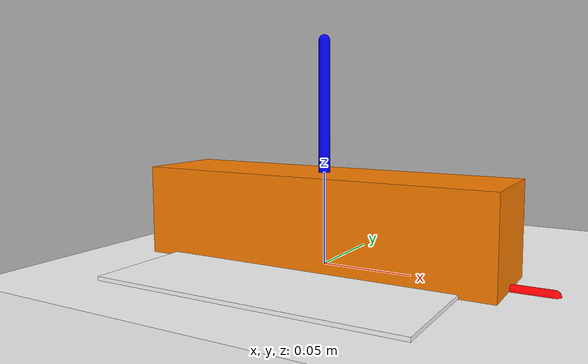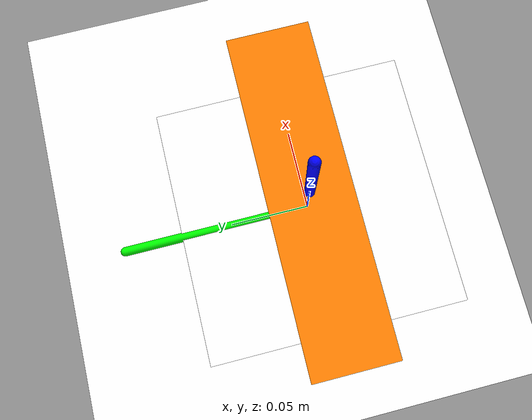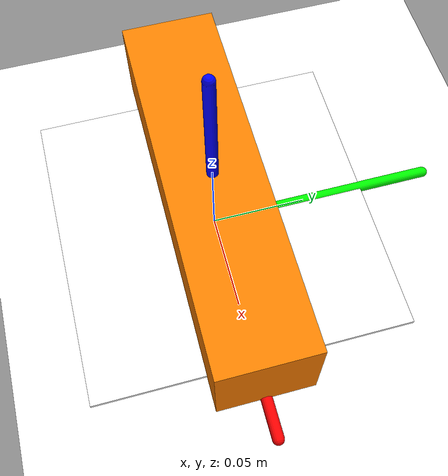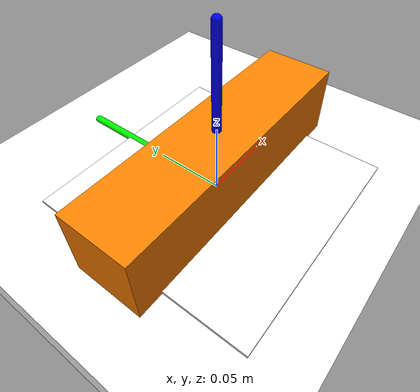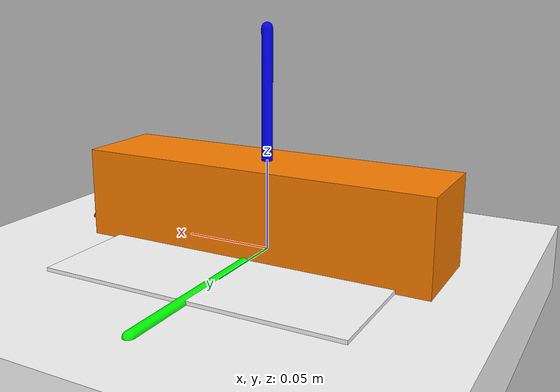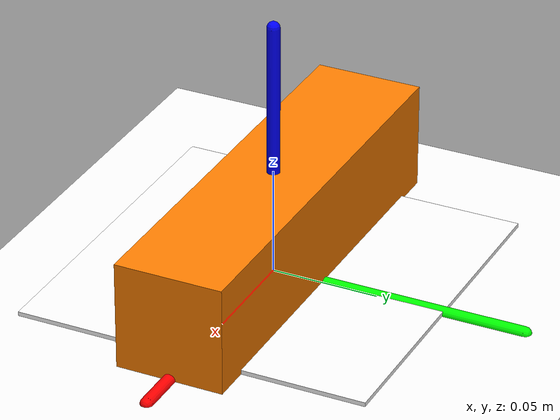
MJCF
<mujoco model="object_tracker">
  <option timestep="0.01"/>

  <asset>
    <texture name="board_tex" type="2d" file="assets/aruco_gridboard.png"/>
    <material name="board_mat" texture="board_tex" texrepeat="1 1" texuniform="false"/>

    <texture name="table_tex" type="2d" builtin="flat" rgb1="0.7 0.7 0.7" width="32" height="32"/>
    <material name="table_mat" texture="table_tex"/>
  </asset>

  <visual>
    <headlight diffuse="0.8 0.8 0.8" ambient="0.4 0.4 0.4" specular="0.1 0.1 0.1"/>
  </visual>

  <worldbody>
    <light pos="0 0 1.5" dir="0 0 -1"/>

    <geom
      name="aruco_board"
      type="box"
      pos="0 0 0.001"
      size="0.082500 0.082500 0.001"
      material="board_mat"
      rgba="1 1 1 1"/>

    <geom
      name="table"
      type="box"
      pos="0 0 -0.02"
      size="1 1 0.02"
      material="table_mat"
      rgba="1 1 1 1"/>

    <body name="tracked_object" pos="0 0 0.025000">
      <freejoint/>
      <geom
        name="tracked_object_geom"
        type="box"
        size="0.100000 0.025000 0.025000"
        rgba="1 0.5 0 1"/>
    </body>

    <site name="world_origin" pos="0 0 0" size="0.01" rgba="1 1 1 1"/>
    <geom name="world_x_axis" type="capsule" fromto="0 0 0 0.12 0 0" size="0.003" rgba="1 0 0 1"/>
    <geom name="world_y_axis" type="capsule" fromto="0 0 0 0 0.12 0" size="0.003" rgba="0 1 0 1"/>
    <geom name="world_z_axis" type="capsule" fromto="0 0 0 0 0 0.12" size="0.003" rgba="0 0 1 1"/>
  </worldbody>
</mujoco>
